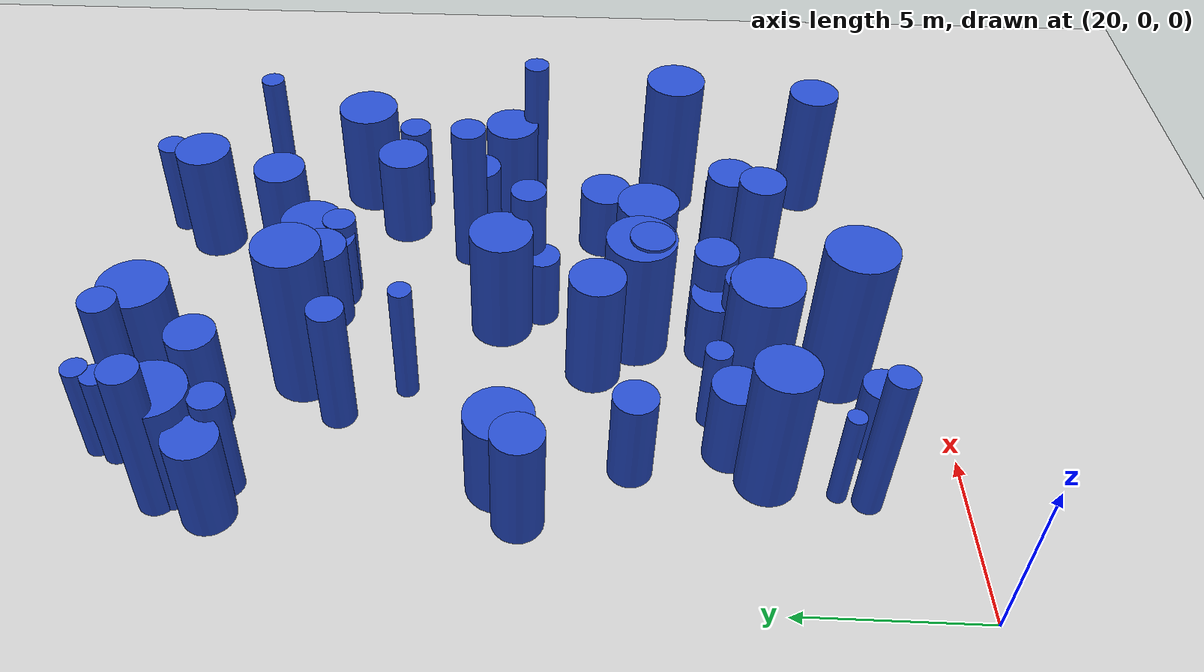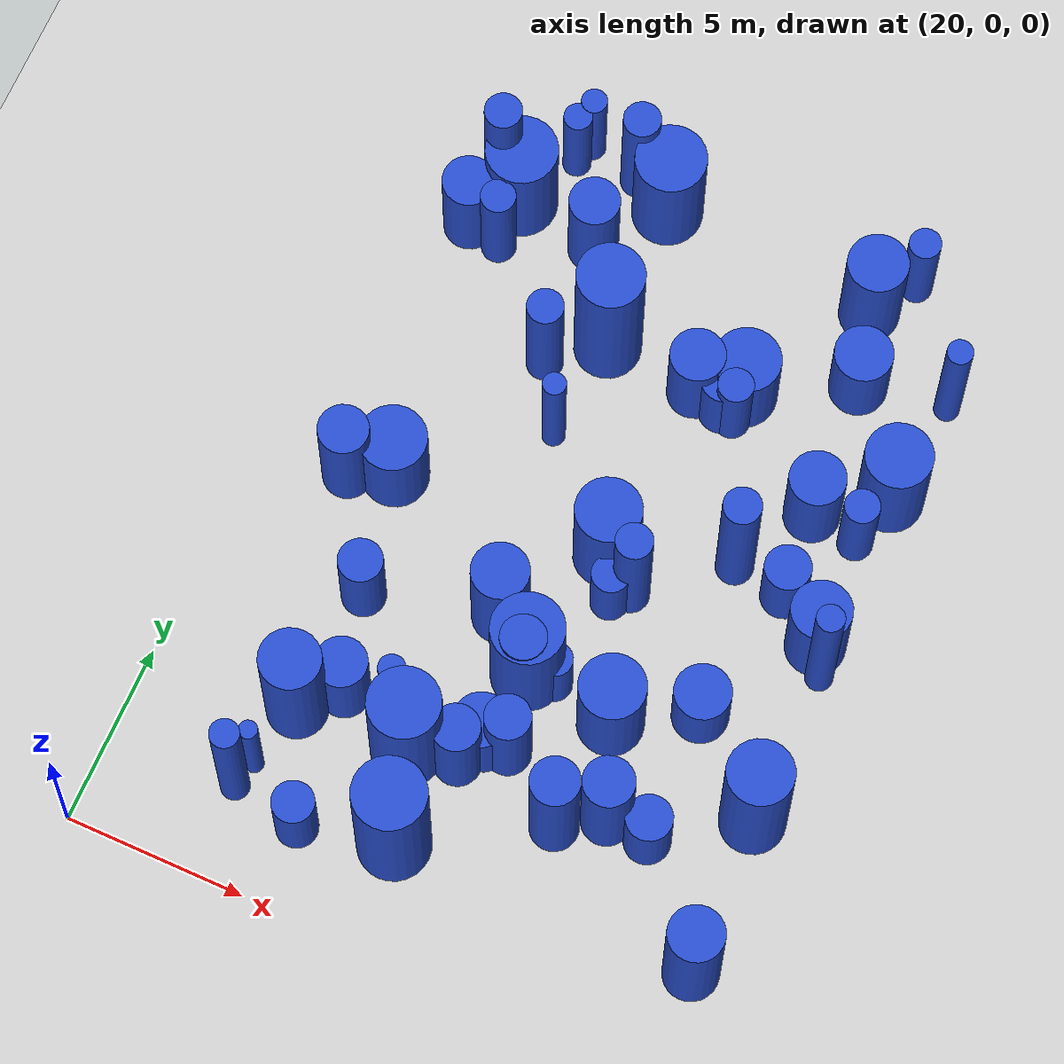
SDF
<sdf version="1.6">
 <world name="default">
  <model name="ground_plane">
   <static>1</static>
   <link name="link">
    <collision name="collision">
     <geometry><plane><normal>0 0 1</normal><size>100 100</size></plane></geometry>
     <surface><friction><ode><mu>100</mu><mu2>50</mu2></ode></friction></surface>
    </collision>
    <visual name="visual">
     <cast_shadows>0</cast_shadows>
     <geometry><plane><normal>0 0 1</normal><size>100 100</size></plane></geometry>
     <material>
      <script><uri>file://media/materials/scripts/gazebo.material</uri><name>Gazebo/Grey</name></script>
     </material>
    </visual>
   </link>
  </model>
  <model name="9">
   <static>0</static>
   <link name="link">
    <inertial>
     <mass>2</mass>
     <inertia><ixx>1.24437</ixx><ixy>0</ixy><ixz>0</ixz><iyy>1.24437</iyy><iyz>0</iyz><izz>0.137792</izz></inertia>
    </inertial>
    <collision name="collision">
     <geometry><cylinder><length>2.65572</length><radius>0.371203</radius></cylinder></geometry>
     <surface><contact><collide_without_contact>1</collide_without_contact></contact></surface>
    </collision>
    <visual name="visual">
     <geometry><cylinder><length>2.65572</length><radius>0.371203</radius></cylinder></geometry>
     <material>
      <script><uri>file://media/materials/scripts/gazebo.material</uri><name>Gazebo/Blue</name></script>
     </material>
    </visual>
    <gravity>0</gravity>
   </link>
   <pose>26.3091 6.47508 1.32786 0 -0 0</pose>
  </model>
  <model name="18">
   <static>0</static>
   <link name="link">
    <inertial>
     <mass>2</mass>
     <inertia><ixx>1.59009</ixx><ixy>0</ixy><ixz>0</ixz><iyy>1.59009</iyy><iyz>0</iyz><izz>0.231054</izz></inertia>
    </inertial>
    <collision name="collision">
     <geometry><cylinder><length>2.97446</length><radius>0.48068</radius></cylinder></geometry>
     <surface><contact><collide_without_contact>1</collide_without_contact></contact></surface>
    </collision>
    <visual name="visual">
     <geometry><cylinder><length>2.97446</length><radius>0.48068</radius></cylinder></geometry>
     <material>
      <script><uri>file://media/materials/scripts/gazebo.material</uri><name>Gazebo/Blue</name></script>
     </material>
    </visual>
    <gravity>0</gravity>
   </link>
   <pose>35.5825 15.4394 1.48723 0 -0 0</pose>
  </model>
  <model name="26">
   <static>0</static>
   <link name="link">
    <inertial>
     <mass>2</mass>
     <inertia><ixx>1.75387</ixx><ixy>0</ixy><ixz>0</ixz><iyy>1.75387</iyy><iyz>0</iyz><izz>0.848622</izz></inertia>
    </inertial>
    <collision name="collision">
     <geometry><cylinder><length>2.82442</length><radius>0.921207</radius></cylinder></geometry>
     <surface><contact><collide_without_contact>1</collide_without_contact></contact></surface>
    </collision>
    <visual name="visual">
     <geometry><cylinder><length>2.82442</length><radius>0.921207</radius></cylinder></geometry>
     <material>
      <script><uri>file://media/materials/scripts/gazebo.material</uri><name>Gazebo/Blue</name></script>
     </material>
    </visual>
    <gravity>0</gravity>
   </link>
   <pose>23.683 12.1353 1.41221 0 -0 0</pose>
  </model>
  <model name="30">
   <static>0</static>
   <link name="link">
    <inertial>
     <mass>2</mass>
     <inertia><ixx>3.98428</ixx><ixy>0</ixy><ixz>0</ixz><iyy>3.98428</iyy><iyz>0</iyz><izz>0.265355</izz></inertia>
    </inertial>
    <collision name="collision">
     <geometry><cylinder><length>4.80724</length><radius>0.515126</radius></cylinder></geometry>
     <surface><contact><collide_without_contact>1</collide_without_contact></contact></surface>
    </collision>
    <visual name="visual">
     <geometry><cylinder><length>4.80724</length><radius>0.515126</radius></cylinder></geometry>
     <material>
      <script><uri>file://media/materials/scripts/gazebo.material</uri><name>Gazebo/Blue</name></script>
     </material>
    </visual>
    <gravity>0</gravity>
   </link>
   <pose>32.9406 13.5218 2.40362 0 -0 0</pose>
  </model>
  <model name="37">
   <static>0</static>
   <link name="link">
    <inertial>
     <mass>2</mass>
     <inertia><ixx>3.11102</ixx><ixy>0</ixy><ixz>0</ixz><iyy>3.11102</iyy><iyz>0</iyz><izz>0.974531</izz></inertia>
    </inertial>
    <collision name="collision">
     <geometry><cylinder><length>3.96769</length><radius>0.987183</radius></cylinder></geometry>
     <surface><contact><collide_without_contact>1</collide_without_contact></contact></surface>
    </collision>
    <visual name="visual">
     <geometry><cylinder><length>3.96769</length><radius>0.987183</radius></cylinder></geometry>
     <material>
      <script><uri>file://media/materials/scripts/gazebo.material</uri><name>Gazebo/Blue</name></script>
     </material>
    </visual>
    <gravity>0</gravity>
   </link>
   <pose>29.2156 8.50585 1.98384 0 -0 0</pose>
  </model>
  <model name="44">
   <static>0</static>
   <link name="link">
    <inertial>
     <mass>2</mass>
     <inertia><ixx>1.0311</ixx><ixy>0</ixy><ixz>0</ixz><iyy>1.0311</iyy><iyz>0</iyz><izz>0.585255</izz></inertia>
    </inertial>
    <collision name="collision">
     <geometry><cylinder><length>2.10495</length><radius>0.765019</radius></cylinder></geometry>
     <surface><contact><collide_without_contact>1</collide_without_contact></contact></surface>
    </collision>
    <visual name="visual">
     <geometry><cylinder><length>2.10495</length><radius>0.765019</radius></cylinder></geometry>
     <material>
      <script><uri>file://media/materials/scripts/gazebo.material</uri><name>Gazebo/Blue</name></script>
     </material>
    </visual>
    <gravity>0</gravity>
   </link>
   <pose>33.7804 9.37787 1.05247 0 -0 0</pose>
  </model>
  <model name="47">
   <static>0</static>
   <link name="link">
    <inertial>
     <mass>2</mass>
     <inertia><ixx>1.72032</ixx><ixy>0</ixy><ixz>0</ixz><iyy>1.72032</iyy><iyz>0</iyz><izz>0.58604</izz></inertia>
    </inertial>
    <collision name="collision">
     <geometry><cylinder><length>2.92639</length><radius>0.765532</radius></cylinder></geometry>
     <surface><contact><collide_without_contact>1</collide_without_contact></contact></surface>
    </collision>
    <visual name="visual">
     <geometry><cylinder><length>2.92639</length><radius>0.765532</radius></cylinder></geometry>
     <material>
      <script><uri>file://media/materials/scripts/gazebo.material</uri><name>Gazebo/Blue</name></script>
     </material>
    </visual>
    <gravity>0</gravity>
   </link>
   <pose>34.2231 15.6872 1.4632 0 -0 0</pose>
  </model>
  <model name="63">
   <static>0</static>
   <link name="link">
    <inertial>
     <mass>2</mass>
     <inertia><ixx>2.80648</ixx><ixy>0</ixy><ixz>0</ixz><iyy>2.80648</iyy><iyz>0</iyz><izz>0.263558</izz></inertia>
    </inertial>
    <collision name="collision">
     <geometry><cylinder><length>4.00602</length><radius>0.513379</radius></cylinder></geometry>
     <surface><contact><collide_without_contact>1</collide_without_contact></contact></surface>
    </collision>
    <visual name="visual">
     <geometry><cylinder><length>4.00602</length><radius>0.513379</radius></cylinder></geometry>
     <material>
      <script><uri>file://media/materials/scripts/gazebo.material</uri><name>Gazebo/Blue</name></script>
     </material>
    </visual>
    <gravity>0</gravity>
   </link>
   <pose>26.0846 22.6359 2.00301 0 -0 0</pose>
  </model>
  <model name="87">
   <static>0</static>
   <link name="link">
    <inertial>
     <mass>2</mass>
     <inertia><ixx>1.36787</ixx><ixy>0</ixy><ixz>0</ixz><iyy>1.36787</iyy><iyz>0</iyz><izz>0.633021</izz></inertia>
    </inertial>
    <collision name="collision">
     <geometry><cylinder><length>2.51161</length><radius>0.795626</radius></cylinder></geometry>
     <surface><contact><collide_without_contact>1</collide_without_contact></contact></surface>
    </collision>
    <visual name="visual">
     <geometry><cylinder><length>2.51161</length><radius>0.795626</radius></cylinder></geometry>
     <material>
      <script><uri>file://media/materials/scripts/gazebo.material</uri><name>Gazebo/Blue</name></script>
     </material>
    </visual>
    <gravity>0</gravity>
   </link>
   <pose>33.9007 19.5526 1.2558 0 -0 0</pose>
  </model>
  <model name="90">
   <static>0</static>
   <link name="link">
    <inertial>
     <mass>2</mass>
     <inertia><ixx>1.53943</ixx><ixy>0</ixy><ixz>0</ixz><iyy>1.53943</iyy><iyz>0</iyz><izz>0.367092</izz></inertia>
    </inertial>
    <collision name="collision">
     <geometry><cylinder><length>2.85225</length><radius>0.605881</radius></cylinder></geometry>
     <surface><contact><collide_without_contact>1</collide_without_contact></contact></surface>
    </collision>
    <visual name="visual">
     <geometry><cylinder><length>2.85225</length><radius>0.605881</radius></cylinder></geometry>
     <material>
      <script><uri>file://media/materials/scripts/gazebo.material</uri><name>Gazebo/Blue</name></script>
     </material>
    </visual>
    <gravity>0</gravity>
   </link>
   <pose>24.3639 8.72064 1.42612 0 -0 0</pose>
  </model>
  <model name="91">
   <static>0</static>
   <link name="link">
    <inertial>
     <mass>2</mass>
     <inertia><ixx>2.57035</ixx><ixy>0</ixy><ixz>0</ixz><iyy>2.57035</iyy><iyz>0</iyz><izz>0.611671</izz></inertia>
    </inertial>
    <collision name="collision">
     <geometry><cylinder><length>3.68607</length><radius>0.782094</radius></cylinder></geometry>
     <surface><contact><collide_without_contact>1</collide_without_contact></contact></surface>
    </collision>
    <visual name="visual">
     <geometry><cylinder><length>3.68607</length><radius>0.782094</radius></cylinder></geometry>
     <material>
      <script><uri>file://media/materials/scripts/gazebo.material</uri><name>Gazebo/Blue</name></script>
     </material>
    </visual>
    <gravity>0</gravity>
   </link>
   <pose>27.8914 9.70745 1.84303 0 -0 0</pose>
  </model>
  <model name="102">
   <static>0</static>
   <link name="link">
    <inertial>
     <mass>2</mass>
     <inertia><ixx>3.77962</ixx><ixy>0</ixy><ixz>0</ixz><iyy>3.77962</iyy><iyz>0</iyz><izz>0.157259</izz></inertia>
    </inertial>
    <collision name="collision">
     <geometry><cylinder><length>4.71232</length><radius>0.396559</radius></cylinder></geometry>
     <surface><contact><collide_without_contact>1</collide_without_contact></contact></surface>
    </collision>
    <visual name="visual">
     <geometry><cylinder><length>4.71232</length><radius>0.396559</radius></cylinder></geometry>
     <material>
      <script><uri>file://media/materials/scripts/gazebo.material</uri><name>Gazebo/Blue</name></script>
     </material>
    </visual>
    <gravity>0</gravity>
   </link>
   <pose>23.5561 2.59339 2.35616 0 -0 0</pose>
  </model>
  <model name="103">
   <static>0</static>
   <link name="link">
    <inertial>
     <mass>2</mass>
     <inertia><ixx>3.11126</ixx><ixy>0</ixy><ixz>0</ixz><iyy>3.11126</iyy><iyz>0</iyz><izz>0.560773</izz></inertia>
    </inertial>
    <collision name="collision">
     <geometry><cylinder><length>4.12131</length><radius>0.748848</radius></cylinder></geometry>
     <surface><contact><collide_without_contact>1</collide_without_contact></contact></surface>
    </collision>
    <visual name="visual">
     <geometry><cylinder><length>4.12131</length><radius>0.748848</radius></cylinder></geometry>
     <material>
      <script><uri>file://media/materials/scripts/gazebo.material</uri><name>Gazebo/Blue</name></script>
     </material>
    </visual>
    <gravity>0</gravity>
   </link>
   <pose>36.3629 2.95543 2.06066 0 -0 0</pose>
  </model>
  <model name="116">
   <static>0</static>
   <link name="link">
    <inertial>
     <mass>2</mass>
     <inertia><ixx>1.62756</ixx><ixy>0</ixy><ixz>0</ixz><iyy>1.62756</iyy><iyz>0</iyz><izz>0.125947</izz></inertia>
    </inertial>
    <collision name="collision">
     <geometry><cylinder><length>3.06391</length><radius>0.35489</radius></cylinder></geometry>
     <surface><contact><collide_without_contact>1</collide_without_contact></contact></surface>
    </collision>
    <visual name="visual">
     <geometry><cylinder><length>3.06391</length><radius>0.35489</radius></cylinder></geometry>
     <material>
      <script><uri>file://media/materials/scripts/gazebo.material</uri><name>Gazebo/Blue</name></script>
     </material>
    </visual>
    <gravity>0</gravity>
   </link>
   <pose>24.5472 22.9949 1.53196 0 -0 0</pose>
  </model>
  <model name="120">
   <static>0</static>
   <link name="link">
    <inertial>
     <mass>2</mass>
     <inertia><ixx>1.66295</ixx><ixy>0</ixy><ixz>0</ixz><iyy>1.66295</iyy><iyz>0</iyz><izz>0.191396</izz></inertia>
    </inertial>
    <collision name="collision">
     <geometry><cylinder><length>3.06652</length><radius>0.437488</radius></cylinder></geometry>
     <surface><contact><collide_without_contact>1</collide_without_contact></contact></surface>
    </collision>
    <visual name="visual">
     <geometry><cylinder><length>3.06652</length><radius>0.437488</radius></cylinder></geometry>
     <material>
      <script><uri>file://media/materials/scripts/gazebo.material</uri><name>Gazebo/Blue</name></script>
     </material>
    </visual>
    <gravity>0</gravity>
   </link>
   <pose>34.1961 22.8748 1.53326 0 -0 0</pose>
  </model>
  <model name="127">
   <static>0</static>
   <link name="link">
    <inertial>
     <mass>2</mass>
     <inertia><ixx>1.55117</ixx><ixy>0</ixy><ixz>0</ixz><iyy>1.55117</iyy><iyz>0</iyz><izz>0.567486</izz></inertia>
    </inertial>
    <collision name="collision">
     <geometry><cylinder><length>2.75763</length><radius>0.753316</radius></cylinder></geometry>
     <surface><contact><collide_without_contact>1</collide_without_contact></contact></surface>
    </collision>
    <visual name="visual">
     <geometry><cylinder><length>2.75763</length><radius>0.753316</radius></cylinder></geometry>
     <material>
      <script><uri>file://media/materials/scripts/gazebo.material</uri><name>Gazebo/Blue</name></script>
     </material>
    </visual>
    <gravity>0</gravity>
   </link>
   <pose>29.9704 17.6052 1.37882 0 -0 0</pose>
  </model>
  <model name="132">
   <static>0</static>
   <link name="link">
    <inertial>
     <mass>2</mass>
     <inertia><ixx>1.3418</ixx><ixy>0</ixy><ixz>0</ixz><iyy>1.3418</iyy><iyz>0</iyz><izz>0.237308</izz></inertia>
    </inertial>
    <collision name="collision">
     <geometry><cylinder><length>2.70904</length><radius>0.487143</radius></cylinder></geometry>
     <surface><contact><collide_without_contact>1</collide_without_contact></contact></surface>
    </collision>
    <visual name="visual">
     <geometry><cylinder><length>2.70904</length><radius>0.487143</radius></cylinder></geometry>
     <material>
      <script><uri>file://media/materials/scripts/gazebo.material</uri><name>Gazebo/Blue</name></script>
     </material>
    </visual>
    <gravity>0</gravity>
   </link>
   <pose>31.2198 17.2572 1.35452 0 -0 0</pose>
  </model>
  <model name="138">
   <static>0</static>
   <link name="link">
    <inertial>
     <mass>2</mass>
     <inertia><ixx>3.24388</ixx><ixy>0</ixy><ixz>0</ixz><iyy>3.24388</iyy><iyz>0</iyz><izz>0.443117</izz></inertia>
    </inertial>
    <collision name="collision">
     <geometry><cylinder><length>4.2584</length><radius>0.66567</radius></cylinder></geometry>
     <surface><contact><collide_without_contact>1</collide_without_contact></contact></surface>
    </collision>
    <visual name="visual">
     <geometry><cylinder><length>4.2584</length><radius>0.66567</radius></cylinder></geometry>
     <material>
      <script><uri>file://media/materials/scripts/gazebo.material</uri><name>Gazebo/Blue</name></script>
     </material>
    </visual>
    <gravity>0</gravity>
   </link>
   <pose>31.5591 5.0381 2.1292 0 -0 0</pose>
  </model>
  <model name="140">
   <static>0</static>
   <link name="link">
    <inertial>
     <mass>2</mass>
     <inertia><ixx>2.45127</ixx><ixy>0</ixy><ixz>0</ixz><iyy>2.45127</iyy><iyz>0</iyz><izz>0.102698</izz></inertia>
    </inertial>
    <collision name="collision">
     <geometry><cylinder><length>3.79467</length><radius>0.320465</radius></cylinder></geometry>
     <surface><contact><collide_without_contact>1</collide_without_contact></contact></surface>
    </collision>
    <visual name="visual">
     <geometry><cylinder><length>3.79467</length><radius>0.320465</radius></cylinder></geometry>
     <material>
      <script><uri>file://media/materials/scripts/gazebo.material</uri><name>Gazebo/Blue</name></script>
     </material>
    </visual>
    <gravity>0</gravity>
   </link>
   <pose>27.0424 14.9216 1.89733 0 -0 0</pose>
  </model>
  <model name="142">
   <static>0</static>
   <link name="link">
    <inertial>
     <mass>2</mass>
     <inertia>
      <ixx>1.59611</ixx>
      <ixy>0</ixy>
      <ixz>0</ixz>
      <iyy>1.59611</iyy>
      <iyz>0</iyz>
      <izz>0.0654625</izz>
     </inertia>
    </inertial>
    <collision name="collision">
     <geometry><cylinder><length>3.06272</length><radius>0.255856</radius></cylinder></geometry>
     <surface><contact><collide_without_contact>1</collide_without_contact></contact></surface>
    </collision>
    <visual name="visual">
     <geometry><cylinder><length>3.06272</length><radius>0.255856</radius></cylinder></geometry>
     <material>
      <script><uri>file://media/materials/scripts/gazebo.material</uri><name>Gazebo/Blue</name></script>
     </material>
    </visual>
    <gravity>0</gravity>
   </link>
   <pose>23.7498 3.3464 1.53136 0 -0 0</pose>
  </model>
  <model name="147">
   <static>0</static>
   <link name="link">
    <inertial>
     <mass>2</mass>
     <inertia><ixx>1.06845</ixx><ixy>0</ixy><ixz>0</ixz><iyy>1.06845</iyy><iyz>0</iyz><izz>0.394035</izz></inertia>
    </inertial>
    <collision name="collision">
     <geometry><cylinder><length>2.28661</length><radius>0.627722</radius></cylinder></geometry>
     <surface><contact><collide_without_contact>1</collide_without_contact></contact></surface>
    </collision>
    <visual name="visual">
     <geometry><cylinder><length>2.28661</length><radius>0.627722</radius></cylinder></geometry>
     <material>
      <script><uri>file://media/materials/scripts/gazebo.material</uri><name>Gazebo/Blue</name></script>
     </material>
    </visual>
    <gravity>0</gravity>
   </link>
   <pose>33.913 5.68334 1.14331 0 -0 0</pose>
  </model>
  <model name="150">
   <static>0</static>
   <link name="link">
    <inertial>
     <mass>2</mass>
     <inertia><ixx>1.91719</ixx><ixy>0</ixy><ixz>0</ixz><iyy>1.91719</iyy><iyz>0</iyz><izz>0.391821</izz></inertia>
    </inertial>
    <collision name="collision">
     <geometry><cylinder><length>3.21367</length><radius>0.625956</radius></cylinder></geometry>
     <surface><contact><collide_without_contact>1</collide_without_contact></contact></surface>
    </collision>
    <visual name="visual">
     <geometry><cylinder><length>3.21367</length><radius>0.625956</radius></cylinder></geometry>
     <material>
      <script><uri>file://media/materials/scripts/gazebo.material</uri><name>Gazebo/Blue</name></script>
     </material>
    </visual>
    <gravity>0</gravity>
   </link>
   <pose>29.6382 6.36023 1.60684 0 -0 0</pose>
  </model>
  <model name="158">
   <static>0</static>
   <link name="link">
    <inertial>
     <mass>2</mass>
     <inertia><ixx>2.58305</ixx><ixy>0</ixy><ixz>0</ixz><iyy>2.58305</iyy><iyz>0</iyz><izz>0.972073</izz></inertia>
    </inertial>
    <collision name="collision">
     <geometry><cylinder><length>3.54713</length><radius>0.985937</radius></cylinder></geometry>
     <surface><contact><collide_without_contact>1</collide_without_contact></contact></surface>
    </collision>
    <visual name="visual">
     <geometry><cylinder><length>3.54713</length><radius>0.985937</radius></cylinder></geometry>
     <material>
      <script><uri>file://media/materials/scripts/gazebo.material</uri><name>Gazebo/Blue</name></script>
     </material>
    </visual>
    <gravity>0</gravity>
   </link>
   <pose>23.4601 20.6996 1.77356 0 -0 0</pose>
  </model>
  <model name="165">
   <static>0</static>
   <link name="link">
    <inertial>
     <mass>2</mass>
     <inertia><ixx>1.02036</ixx><ixy>0</ixy><ixz>0</ixz><iyy>1.02036</iyy><iyz>0</iyz><izz>0.276299</izz></inertia>
    </inertial>
    <collision name="collision">
     <geometry><cylinder><length>2.30071</length><radius>0.525641</radius></cylinder></geometry>
     <surface><contact><collide_without_contact>1</collide_without_contact></contact></surface>
    </collision>
    <visual name="visual">
     <geometry><cylinder><length>2.30071</length><radius>0.525641</radius></cylinder></geometry>
     <material>
      <script><uri>file://media/materials/scripts/gazebo.material</uri><name>Gazebo/Blue</name></script>
     </material>
    </visual>
    <gravity>0</gravity>
   </link>
   <pose>30.3334 11.2573 1.15035 0 -0 0</pose>
  </model>
  <model name="176">
   <static>0</static>
   <link name="link">
    <inertial>
     <mass>2</mass>
     <inertia><ixx>2.84758</ixx><ixy>0</ixy><ixz>0</ixz><iyy>2.84758</iyy><iyz>0</iyz><izz>0.250699</izz></inertia>
    </inertial>
    <collision name="collision">
     <geometry><cylinder><length>4.04146</length><radius>0.500699</radius></cylinder></geometry>
     <surface><contact><collide_without_contact>1</collide_without_contact></contact></surface>
    </collision>
    <visual name="visual">
     <geometry><cylinder><length>4.04146</length><radius>0.500699</radius></cylinder></geometry>
     <material>
      <script><uri>file://media/materials/scripts/gazebo.material</uri><name>Gazebo/Blue</name></script>
     </material>
    </visual>
    <gravity>0</gravity>
   </link>
   <pose>25.9682 16.7042 2.02073 0 -0 0</pose>
  </model>
  <model name="197">
   <static>0</static>
   <link name="link">
    <inertial>
     <mass>2</mass>
     <inertia><ixx>4.59149</ixx><ixy>0</ixy><ixz>0</ixz><iyy>4.59149</iyy><iyz>0</iyz><izz>0.850962</izz></inertia>
    </inertial>
    <collision name="collision">
     <geometry><cylinder><length>4.99961</length><radius>0.922476</radius></cylinder></geometry>
     <surface><contact><collide_without_contact>1</collide_without_contact></contact></surface>
    </collision>
    <visual name="visual">
     <geometry><cylinder><length>4.99961</length><radius>0.922476</radius></cylinder></geometry>
     <material>
      <script><uri>file://media/materials/scripts/gazebo.material</uri><name>Gazebo/Blue</name></script>
     </material>
    </visual>
    <gravity>0</gravity>
   </link>
   <pose>27.3137 17.8356 2.4998 0 -0 0</pose>
  </model>
  <model name="198">
   <static>0</static>
   <link name="link">
    <inertial>
     <mass>2</mass>
     <inertia><ixx>3.85908</ixx><ixy>0</ixy><ixz>0</ixz><iyy>3.85908</iyy><iyz>0</iyz><izz>0.789412</izz></inertia>
    </inertial>
    <collision name="collision">
     <geometry><cylinder><length>4.5592</length><radius>0.888488</radius></cylinder></geometry>
     <surface><contact><collide_without_contact>1</collide_without_contact></contact></surface>
    </collision>
    <visual name="visual">
     <geometry><cylinder><length>4.5592</length><radius>0.888488</radius></cylinder></geometry>
     <material>
      <script><uri>file://media/materials/scripts/gazebo.material</uri><name>Gazebo/Blue</name></script>
     </material>
    </visual>
    <gravity>0</gravity>
   </link>
   <pose>36.1791 7.30989 2.2796 0 -0 0</pose>
  </model>
  <model name="205">
   <static>0</static>
   <link name="link">
    <inertial>
     <mass>2</mass>
     <inertia><ixx>3.23255</ixx><ixy>0</ixy><ixz>0</ixz><iyy>3.23255</iyy><iyz>0</iyz><izz>0.253733</izz></inertia>
    </inertial>
    <collision name="collision">
     <geometry><cylinder><length>4.31673</length><radius>0.50372</radius></cylinder></geometry>
     <surface><contact><collide_without_contact>1</collide_without_contact></contact></surface>
    </collision>
    <visual name="visual">
     <geometry><cylinder><length>4.31673</length><radius>0.50372</radius></cylinder></geometry>
     <material>
      <script><uri>file://media/materials/scripts/gazebo.material</uri><name>Gazebo/Blue</name></script>
     </material>
    </visual>
    <gravity>0</gravity>
   </link>
   <pose>30.7641 11.6674 2.15836 0 -0 0</pose>
  </model>
  <model name="222">
   <static>0</static>
   <link name="link">
    <inertial>
     <mass>2</mass>
     <inertia><ixx>1.59547</ixx><ixy>0</ixy><ixz>0</ixz><iyy>1.59547</iyy><iyz>0</iyz><izz>0.836819</izz></inertia>
    </inertial>
    <collision name="collision">
     <geometry><cylinder><length>2.65751</length><radius>0.914778</radius></cylinder></geometry>
     <surface><contact><collide_without_contact>1</collide_without_contact></contact></surface>
    </collision>
    <visual name="visual">
     <geometry><cylinder><length>2.65751</length><radius>0.914778</radius></cylinder></geometry>
     <material>
      <script><uri>file://media/materials/scripts/gazebo.material</uri><name>Gazebo/Blue</name></script>
     </material>
    </visual>
    <gravity>0</gravity>
   </link>
   <pose>31.2013 18.0572 1.32875 0 -0 0</pose>
  </model>
  <model name="228">
   <static>0</static>
   <link name="link">
    <inertial>
     <mass>2</mass>
     <inertia><ixx>2.44887</ixx><ixy>0</ixy><ixz>0</ixz><iyy>2.44887</iyy><iyz>0</iyz><izz>0.682109</izz></inertia>
    </inertial>
    <collision name="collision">
     <geometry><cylinder><length>3.55624</length><radius>0.825899</radius></cylinder></geometry>
     <surface><contact><collide_without_contact>1</collide_without_contact></contact></surface>
    </collision>
    <visual name="visual">
     <geometry><cylinder><length>3.55624</length><radius>0.825899</radius></cylinder></geometry>
     <material>
      <script><uri>file://media/materials/scripts/gazebo.material</uri><name>Gazebo/Blue</name></script>
     </material>
    </visual>
    <gravity>0</gravity>
   </link>
   <pose>33.3362 21.64 1.77812 0 -0 0</pose>
  </model>
  <model name="231">
   <static>0</static>
   <link name="link">
    <inertial>
     <mass>2</mass>
     <inertia><ixx>1.43429</ixx><ixy>0</ixy><ixz>0</ixz><iyy>1.43429</iyy><iyz>0</iyz><izz>0.168095</izz></inertia>
    </inertial>
    <collision name="collision">
     <geometry><cylinder><length>2.8463</length><radius>0.409994</radius></cylinder></geometry>
     <surface><contact><collide_without_contact>1</collide_without_contact></contact></surface>
    </collision>
    <visual name="visual">
     <geometry><cylinder><length>2.8463</length><radius>0.409994</radius></cylinder></geometry>
     <material>
      <script><uri>file://media/materials/scripts/gazebo.material</uri><name>Gazebo/Blue</name></script>
     </material>
    </visual>
    <gravity>0</gravity>
   </link>
   <pose>32.032 8.22655 1.42315 0 -0 0</pose>
  </model>
  <model name="235">
   <static>0</static>
   <link name="link">
    <inertial>
     <mass>2</mass>
     <inertia><ixx>1.12888</ixx><ixy>0</ixy><ixz>0</ixz><iyy>1.12888</iyy><iyz>0</iyz><izz>0.454603</izz></inertia>
    </inertial>
    <collision name="collision">
     <geometry><cylinder><length>2.32582</length><radius>0.674242</radius></cylinder></geometry>
     <surface><contact><collide_without_contact>1</collide_without_contact></contact></surface>
    </collision>
    <visual name="visual">
     <geometry><cylinder><length>2.32582</length><radius>0.674242</radius></cylinder></geometry>
     <material>
      <script><uri>file://media/materials/scripts/gazebo.material</uri><name>Gazebo/Blue</name></script>
     </material>
    </visual>
    <gravity>0</gravity>
   </link>
   <pose>30.8583 17.4475 1.16291 0 -0 0</pose>
  </model>
  <model name="263">
   <static>0</static>
   <link name="link">
    <inertial>
     <mass>2</mass>
     <inertia><ixx>3.5206</ixx><ixy>0</ixy><ixz>0</ixz><iyy>3.5206</iyy><iyz>0</iyz><izz>0.957333</izz></inertia>
    </inertial>
    <collision name="collision">
     <geometry><cylinder><length>4.27219</length><radius>0.978434</radius></cylinder></geometry>
     <surface><contact><collide_without_contact>1</collide_without_contact></contact></surface>
    </collision>
    <visual name="visual">
     <geometry><cylinder><length>4.27219</length><radius>0.978434</radius></cylinder></geometry>
     <material>
      <script><uri>file://media/materials/scripts/gazebo.material</uri><name>Gazebo/Blue</name></script>
     </material>
    </visual>
    <gravity>0</gravity>
   </link>
   <pose>27.2332 5.3238 2.13609 0 -0 0</pose>
  </model>
  <model name="271">
   <static>0</static>
   <link name="link">
    <inertial>
     <mass>2</mass>
     <inertia><ixx>2.16723</ixx><ixy>0</ixy><ixz>0</ixz><iyy>2.16723</iyy><iyz>0</iyz><izz>0.809368</izz></inertia>
    </inertial>
    <collision name="collision">
     <geometry><cylinder><length>3.25197</length><radius>0.899649</radius></cylinder></geometry>
     <surface><contact><collide_without_contact>1</collide_without_contact></contact></surface>
    </collision>
    <visual name="visual">
     <geometry><cylinder><length>3.25197</length><radius>0.899649</radius></cylinder></geometry>
     <material>
      <script><uri>file://media/materials/scripts/gazebo.material</uri><name>Gazebo/Blue</name></script>
     </material>
    </visual>
    <gravity>0</gravity>
   </link>
   <pose>31.734 8.20599 1.62598 0 -0 0</pose>
  </model>
  <model name="300">
   <static>0</static>
   <link name="link">
    <inertial>
     <mass>2</mass>
     <inertia><ixx>4.12107</ixx><ixy>0</ixy><ixz>0</ixz><iyy>4.12107</iyy><iyz>0</iyz><izz>0.261751</izz></inertia>
    </inertial>
    <collision name="collision">
     <geometry><cylinder><length>4.89297</length><radius>0.511616</radius></cylinder></geometry>
     <surface><contact><collide_without_contact>1</collide_without_contact></contact></surface>
    </collision>
    <visual name="visual">
     <geometry><cylinder><length>4.89297</length><radius>0.511616</radius></cylinder></geometry>
     <material>
      <script><uri>file://media/materials/scripts/gazebo.material</uri><name>Gazebo/Blue</name></script>
     </material>
    </visual>
    <gravity>0</gravity>
   </link>
   <pose>22.8068 20.9653 2.44649 0 -0 0</pose>
  </model>
  <model name="306">
   <static>0</static>
   <link name="link">
    <inertial>
     <mass>2</mass>
     <inertia><ixx>1.90632</ixx><ixy>0</ixy><ixz>0</ixz><iyy>1.90632</iyy><iyz>0</iyz><izz>0.419615</izz></inertia>
    </inertial>
    <collision name="collision">
     <geometry><cylinder><length>3.19047</length><radius>0.647777</radius></cylinder></geometry>
     <surface><contact><collide_without_contact>1</collide_without_contact></contact></surface>
    </collision>
    <visual name="visual">
     <geometry><cylinder><length>3.19047</length><radius>0.647777</radius></cylinder></geometry>
     <material>
      <script><uri>file://media/materials/scripts/gazebo.material</uri><name>Gazebo/Blue</name></script>
     </material>
    </visual>
    <gravity>0</gravity>
   </link>
   <pose>28.5526 5.57049 1.59523 0 -0 0</pose>
  </model>
  <model name="310">
   <static>0</static>
   <link name="link">
    <inertial>
     <mass>2</mass>
     <inertia><ixx>3.41687</ixx><ixy>0</ixy><ixz>0</ixz><iyy>3.41687</iyy><iyz>0</iyz><izz>0.693816</izz></inertia>
    </inertial>
    <collision name="collision">
     <geometry><cylinder><length>4.29182</length><radius>0.832956</radius></cylinder></geometry>
     <surface><contact><collide_without_contact>1</collide_without_contact></contact></surface>
    </collision>
    <visual name="visual">
     <geometry><cylinder><length>4.29182</length><radius>0.832956</radius></cylinder></geometry>
     <material>
      <script><uri>file://media/materials/scripts/gazebo.material</uri><name>Gazebo/Blue</name></script>
     </material>
    </visual>
    <gravity>0</gravity>
   </link>
   <pose>24.1228 5.16198 2.14591 0 -0 0</pose>
  </model>
  <model name="319">
   <static>0</static>
   <link name="link">
    <inertial>
     <mass>2</mass>
     <inertia><ixx>1.73279</ixx><ixy>0</ixy><ixz>0</ixz><iyy>1.73279</iyy><iyz>0</iyz><izz>0.523231</izz></inertia>
    </inertial>
    <collision name="collision">
     <geometry><cylinder><length>2.97104</length><radius>0.723347</radius></cylinder></geometry>
     <surface><contact><collide_without_contact>1</collide_without_contact></contact></surface>
    </collision>
    <visual name="visual">
     <geometry><cylinder><length>2.97104</length><radius>0.723347</radius></cylinder></geometry>
     <material>
      <script><uri>file://media/materials/scripts/gazebo.material</uri><name>Gazebo/Blue</name></script>
     </material>
    </visual>
    <gravity>0</gravity>
   </link>
   <pose>22.4501 19.534 1.48552 0 -0 0</pose>
  </model>
  <model name="337">
   <static>0</static>
   <link name="link">
    <inertial>
     <mass>2</mass>
     <inertia>
      <ixx>0.913014</ixx>
      <ixy>0</ixy>
      <ixz>0</ixz>
      <iyy>0.913014</iyy>
      <iyz>0</iyz>
      <izz>0.221923</izz>
     </inertia>
    </inertial>
    <collision name="collision">
     <geometry><cylinder><length>2.1937</length><radius>0.471087</radius></cylinder></geometry>
     <surface><contact><collide_without_contact>1</collide_without_contact></contact></surface>
    </collision>
    <visual name="visual">
     <geometry><cylinder><length>2.1937</length><radius>0.471087</radius></cylinder></geometry>
     <material>
      <script><uri>file://media/materials/scripts/gazebo.material</uri><name>Gazebo/Blue</name></script>
     </material>
    </visual>
    <gravity>0</gravity>
   </link>
   <pose>29.9716 8.5735 1.09685 0 -0 0</pose>
  </model>
  <model name="355">
   <static>0</static>
   <link name="link">
    <inertial>
     <mass>2</mass>
     <inertia><ixx>2.63423</ixx><ixy>0</ixy><ixz>0</ixz><iyy>2.63423</iyy><iyz>0</iyz><izz>0.950604</izz></inertia>
    </inertial>
    <collision name="collision">
     <geometry><cylinder><length>3.59911</length><radius>0.974989</radius></cylinder></geometry>
     <surface><contact><collide_without_contact>1</collide_without_contact></contact></surface>
    </collision>
    <visual name="visual">
     <geometry><cylinder><length>3.59911</length><radius>0.974989</radius></cylinder></geometry>
     <material>
      <script><uri>file://media/materials/scripts/gazebo.material</uri><name>Gazebo/Blue</name></script>
     </material>
    </visual>
    <gravity>0</gravity>
   </link>
   <pose>27.1727 22.096 1.79955 0 -0 0</pose>
  </model>
  <model name="365">
   <static>0</static>
   <link name="link">
    <inertial>
     <mass>2</mass>
     <inertia><ixx>2.93344</ixx><ixy>0</ixy><ixz>0</ixz><iyy>2.93344</iyy><iyz>0</iyz><izz>0.388637</izz></inertia>
    </inertial>
    <collision name="collision">
     <geometry><cylinder><length>4.05398</length><radius>0.623408</radius></cylinder></geometry>
     <surface><contact><collide_without_contact>1</collide_without_contact></contact></surface>
    </collision>
    <visual name="visual">
     <geometry><cylinder><length>4.05398</length><radius>0.623408</radius></cylinder></geometry>
     <material>
      <script><uri>file://media/materials/scripts/gazebo.material</uri><name>Gazebo/Blue</name></script>
     </material>
    </visual>
    <gravity>0</gravity>
   </link>
   <pose>29.2239 8.22258 2.02699 0 -0 0</pose>
  </model>
  <model name="368">
   <static>0</static>
   <link name="link">
    <inertial>
     <mass>2</mass>
     <inertia><ixx>1.434</ixx><ixy>0</ixy><ixz>0</ixz><iyy>1.434</iyy><iyz>0</iyz><izz>0.491803</izz></inertia>
    </inertial>
    <collision name="collision">
     <geometry><cylinder><length>2.66994</length><radius>0.701286</radius></cylinder></geometry>
     <surface><contact><collide_without_contact>1</collide_without_contact></contact></surface>
    </collision>
    <visual name="visual">
     <geometry><cylinder><length>2.66994</length><radius>0.701286</radius></cylinder></geometry>
     <material>
      <script><uri>file://media/materials/scripts/gazebo.material</uri><name>Gazebo/Blue</name></script>
     </material>
    </visual>
    <gravity>0</gravity>
   </link>
   <pose>25.0611 6.07751 1.33497 0 -0 0</pose>
  </model>
  <model name="370">
   <static>0</static>
   <link name="link">
    <inertial>
     <mass>2</mass>
     <inertia><ixx>1.13017</ixx><ixy>0</ixy><ixz>0</ixz><iyy>1.13017</iyy><iyz>0</iyz><izz>0.3992</izz></inertia>
    </inertial>
    <collision name="collision">
     <geometry><cylinder><length>2.36293</length><radius>0.631822</radius></cylinder></geometry>
     <surface><contact><collide_without_contact>1</collide_without_contact></contact></surface>
    </collision>
    <visual name="visual">
     <geometry><cylinder><length>2.36293</length><radius>0.631822</radius></cylinder></geometry>
     <material>
      <script><uri>file://media/materials/scripts/gazebo.material</uri><name>Gazebo/Blue</name></script>
     </material>
    </visual>
    <gravity>0</gravity>
   </link>
   <pose>34.4456 13.3083 1.18146 0 -0 0</pose>
  </model>
  <model name="373">
   <static>0</static>
   <link name="link">
    <inertial>
     <mass>2</mass>
     <inertia><ixx>1.12779</ixx><ixy>0</ixy><ixz>0</ixz><iyy>1.12779</iyy><iyz>0</iyz><izz>0.566676</izz></inertia>
    </inertial>
    <collision name="collision">
     <geometry><cylinder><length>2.25093</length><radius>0.752779</radius></cylinder></geometry>
     <surface><contact><collide_without_contact>1</collide_without_contact></contact></surface>
    </collision>
    <visual name="visual">
     <geometry><cylinder><length>2.25093</length><radius>0.752779</radius></cylinder></geometry>
     <material>
      <script><uri>file://media/materials/scripts/gazebo.material</uri><name>Gazebo/Blue</name></script>
     </material>
    </visual>
    <gravity>0</gravity>
   </link>
   <pose>28.9341 6.28472 1.12547 0 -0 0</pose>
  </model>
  <model name="377">
   <static>0</static>
   <link name="link">
    <inertial>
     <mass>2</mass>
     <inertia><ixx>2.44957</ixx><ixy>0</ixy><ixz>0</ixz><iyy>2.44957</iyy><iyz>0</iyz><izz>0.480055</izz></inertia>
    </inertial>
    <collision name="collision">
     <geometry><cylinder><length>3.64105</length><radius>0.69286</radius></cylinder></geometry>
     <surface><contact><collide_without_contact>1</collide_without_contact></contact></surface>
    </collision>
    <visual name="visual">
     <geometry><cylinder><length>3.64105</length><radius>0.69286</radius></cylinder></geometry>
     <material>
      <script><uri>file://media/materials/scripts/gazebo.material</uri><name>Gazebo/Blue</name></script>
     </material>
    </visual>
    <gravity>0</gravity>
   </link>
   <pose>32.7276 5.76108 1.82052 0 -0 0</pose>
  </model>
  <model name="382">
   <static>0</static>
   <link name="link">
    <inertial>
     <mass>2</mass>
     <inertia><ixx>2.60217</ixx><ixy>0</ixy><ixz>0</ixz><iyy>2.60217</iyy><iyz>0</iyz><izz>0.809727</izz></inertia>
    </inertial>
    <collision name="collision">
     <geometry><cylinder><length>3.63095</length><radius>0.899848</radius></cylinder></geometry>
     <surface><contact><collide_without_contact>1</collide_without_contact></contact></surface>
    </collision>
    <visual name="visual">
     <geometry><cylinder><length>3.63095</length><radius>0.899848</radius></cylinder></geometry>
     <material>
      <script><uri>file://media/materials/scripts/gazebo.material</uri><name>Gazebo/Blue</name></script>
     </material>
    </visual>
    <gravity>0</gravity>
   </link>
   <pose>29.7304 12.3984 1.81548 0 -0 0</pose>
  </model>
  <model name="400">
   <static>0</static>
   <link name="link">
    <inertial>
     <mass>2</mass>
     <inertia><ixx>4.21778</ixx><ixy>0</ixy><ixz>0</ixz><iyy>4.21778</iyy><iyz>0</iyz><izz>0.14342</izz></inertia>
    </inertial>
    <collision name="collision">
     <geometry><cylinder><length>4.98762</length><radius>0.378709</radius></cylinder></geometry>
     <surface><contact><collide_without_contact>1</collide_without_contact></contact></surface>
    </collision>
    <visual name="visual">
     <geometry><cylinder><length>4.98762</length><radius>0.378709</radius></cylinder></geometry>
     <material>
      <script><uri>file://media/materials/scripts/gazebo.material</uri><name>Gazebo/Blue</name></script>
     </material>
    </visual>
    <gravity>0</gravity>
   </link>
   <pose>36.1927 11.6278 2.49381 0 -0 0</pose>
  </model>
  <model name="407">
   <static>0</static>
   <link name="link">
    <inertial>
     <mass>2</mass>
     <inertia><ixx>2.05358</ixx><ixy>0</ixy><ixz>0</ixz><iyy>2.05358</iyy><iyz>0</iyz><izz>0.232101</izz></inertia>
    </inertial>
    <collision name="collision">
     <geometry><cylinder><length>3.40958</length><radius>0.481768</radius></cylinder></geometry>
     <surface><contact><collide_without_contact>1</collide_without_contact></contact></surface>
    </collision>
    <visual name="visual">
     <geometry><cylinder><length>3.40958</length><radius>0.481768</radius></cylinder></geometry>
     <material>
      <script><uri>file://media/materials/scripts/gazebo.material</uri><name>Gazebo/Blue</name></script>
     </material>
    </visual>
    <gravity>0</gravity>
   </link>
   <pose>23.4237 19.2822 1.70479 0 -0 0</pose>
  </model>
  <model name="408">
   <static>0</static>
   <link name="link">
    <inertial>
     <mass>2</mass>
     <inertia><ixx>2.21164</ixx><ixy>0</ixy><ixz>0</ixz><iyy>2.21164</iyy><iyz>0</iyz><izz>0.474376</izz></inertia>
    </inertial>
    <collision name="collision">
     <geometry><cylinder><length>3.44191</length><radius>0.68875</radius></cylinder></geometry>
     <surface><contact><collide_without_contact>1</collide_without_contact></contact></surface>
    </collision>
    <visual name="visual">
     <geometry><cylinder><length>3.44191</length><radius>0.68875</radius></cylinder></geometry>
     <material>
      <script><uri>file://media/materials/scripts/gazebo.material</uri><name>Gazebo/Blue</name></script>
     </material>
    </visual>
    <gravity>0</gravity>
   </link>
   <pose>22.5278 11.6164 1.72095 0 -0 0</pose>
  </model>
  <model name="409">
   <static>0</static>
   <link name="link">
    <inertial>
     <mass>2</mass>
     <inertia><ixx>4.38723</ixx><ixy>0</ixy><ixz>0</ixz><iyy>4.38723</iyy><iyz>0</iyz><izz>0.975165</izz></inertia>
    </inertial>
    <collision name="collision">
     <geometry><cylinder><length>4.83714</length><radius>0.987505</radius></cylinder></geometry>
     <surface><contact><collide_without_contact>1</collide_without_contact></contact></surface>
    </collision>
    <visual name="visual">
     <geometry><cylinder><length>4.83714</length><radius>0.987505</radius></cylinder></geometry>
     <material>
      <script><uri>file://media/materials/scripts/gazebo.material</uri><name>Gazebo/Blue</name></script>
     </material>
    </visual>
    <gravity>0</gravity>
   </link>
   <pose>27.9918 2.88038 2.41857 0 -0 0</pose>
  </model>
  <model name="412">
   <static>0</static>
   <link name="link">
    <inertial>
     <mass>2</mass>
     <inertia><ixx>1.12282</ixx><ixy>0</ixy><ixz>0</ixz><iyy>1.12282</iyy><iyz>0</iyz><izz>0.327947</izz></inertia>
    </inertial>
    <collision name="collision">
     <geometry><cylinder><length>2.39855</length><radius>0.572667</radius></cylinder></geometry>
     <surface><contact><collide_without_contact>1</collide_without_contact></contact></surface>
    </collision>
    <visual name="visual">
     <geometry><cylinder><length>2.39855</length><radius>0.572667</radius></cylinder></geometry>
     <material>
      <script><uri>file://media/materials/scripts/gazebo.material</uri><name>Gazebo/Blue</name></script>
     </material>
    </visual>
    <gravity>0</gravity>
   </link>
   <pose>25.5002 2.25758 1.19928 0 -0 0</pose>
  </model>
  <model name="424">
   <static>0</static>
   <link name="link">
    <inertial>
     <mass>2</mass>
     <inertia><ixx>1.90371</ixx><ixy>0</ixy><ixz>0</ixz><iyy>1.90371</iyy><iyz>0</iyz><izz>0.667915</izz></inertia>
    </inertial>
    <collision name="collision">
     <geometry><cylinder><length>3.06896</length><radius>0.817261</radius></cylinder></geometry>
     <surface><contact><collide_without_contact>1</collide_without_contact></contact></surface>
    </collision>
    <visual name="visual">
     <geometry><cylinder><length>3.06896</length><radius>0.817261</radius></cylinder></geometry>
     <material>
      <script><uri>file://media/materials/scripts/gazebo.material</uri><name>Gazebo/Blue</name></script>
     </material>
    </visual>
    <gravity>0</gravity>
   </link>
   <pose>35.7596 12.3728 1.53448 0 -0 0</pose>
  </model>
  <model name="435">
   <static>0</static>
   <link name="link">
    <inertial>
     <mass>2</mass>
     <inertia><ixx>1.99126</ixx><ixy>0</ixy><ixz>0</ixz><iyy>1.99126</iyy><iyz>0</iyz><izz>0.478569</izz></inertia>
    </inertial>
    <collision name="collision">
     <geometry><cylinder><length>3.2422</length><radius>0.691787</radius></cylinder></geometry>
     <surface><contact><collide_without_contact>1</collide_without_contact></contact></surface>
    </collision>
    <visual name="visual">
     <geometry><cylinder><length>3.2422</length><radius>0.691787</radius></cylinder></geometry>
     <material>
      <script><uri>file://media/materials/scripts/gazebo.material</uri><name>Gazebo/Blue</name></script>
     </material>
    </visual>
    <gravity>0</gravity>
   </link>
   <pose>25.7778 20.2815 1.6211 0 -0 0</pose>
  </model>
  <model name="443">
   <static>0</static>
   <link name="link">
    <inertial>
     <mass>2</mass>
     <inertia><ixx>2.93233</ixx><ixy>0</ixy><ixz>0</ixz><iyy>2.93233</iyy><iyz>0</iyz><izz>0.124821</izz></inertia>
    </inertial>
    <collision name="collision">
     <geometry><cylinder><length>4.14964</length><radius>0.3533</radius></cylinder></geometry>
     <surface><contact><collide_without_contact>1</collide_without_contact></contact></surface>
    </collision>
    <visual name="visual">
     <geometry><cylinder><length>4.14964</length><radius>0.3533</radius></cylinder></geometry>
     <material>
      <script><uri>file://media/materials/scripts/gazebo.material</uri><name>Gazebo/Blue</name></script>
     </material>
    </visual>
    <gravity>0</gravity>
   </link>
   <pose>36.3073 19.9795 2.07482 0 -0 0</pose>
  </model>
  <model name="461">
   <static>0</static>
   <link name="link">
    <inertial>
     <mass>2</mass>
     <inertia><ixx>1.62666</ixx><ixy>0</ixy><ixz>0</ixz><iyy>1.62666</iyy><iyz>0</iyz><izz>0.153411</izz></inertia>
    </inertial>
    <collision name="collision">
     <geometry><cylinder><length>3.04954</length><radius>0.391678</radius></cylinder></geometry>
     <surface><contact><collide_without_contact>1</collide_without_contact></contact></surface>
    </collision>
    <visual name="visual">
     <geometry><cylinder><length>3.04954</length><radius>0.391678</radius></cylinder></geometry>
     <material>
      <script><uri>file://media/materials/scripts/gazebo.material</uri><name>Gazebo/Blue</name></script>
     </material>
    </visual>
    <gravity>0</gravity>
   </link>
   <pose>24.3392 22.4021 1.52477 0 -0 0</pose>
  </model>
  <model name="496">
   <static>0</static>
   <link name="link">
    <inertial>
     <mass>2</mass>
     <inertia><ixx>2.39247</ixx><ixy>0</ixy><ixz>0</ixz><iyy>2.39247</iyy><iyz>0</iyz><izz>0.836838</izz></inertia>
    </inertial>
    <collision name="collision">
     <geometry><cylinder><length>3.44156</length><radius>0.914788</radius></cylinder></geometry>
     <surface><contact><collide_without_contact>1</collide_without_contact></contact></surface>
    </collision>
    <visual name="visual">
     <geometry><cylinder><length>3.44156</length><radius>0.914788</radius></cylinder></geometry>
     <material>
      <script><uri>file://media/materials/scripts/gazebo.material</uri><name>Gazebo/Blue</name></script>
     </material>
    </visual>
    <gravity>0</gravity>
   </link>
   <pose>35.9396 16.9498 1.72078 0 -0 0</pose>
  </model>
 </world>
</sdf>
